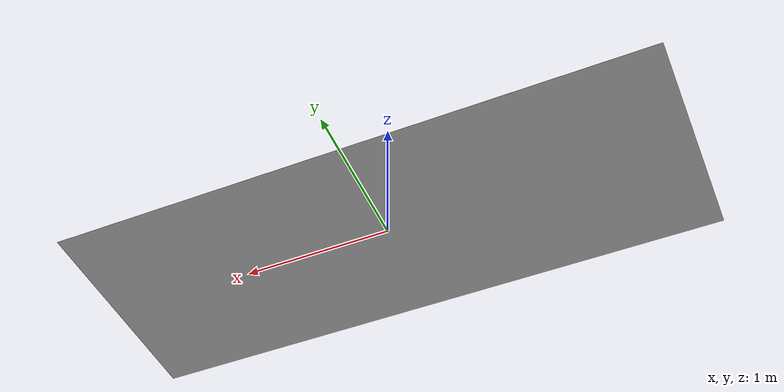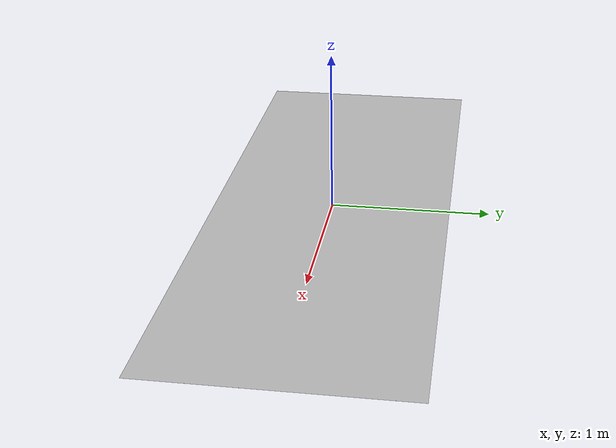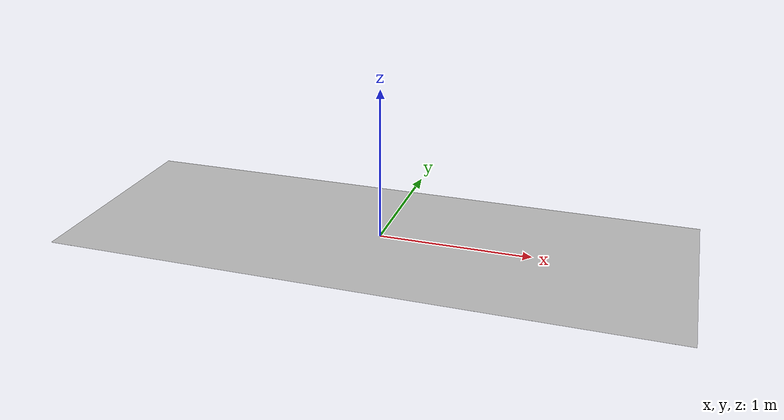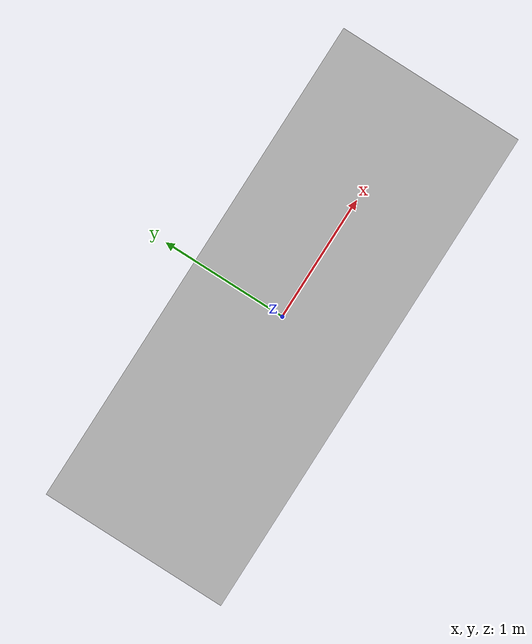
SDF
<?xml version='1.0'?>
<sdf version='1.5'>
  <model name='gm_planter'>

    <link name='planter'>
      <pose frame=''>0 0 0 0 0 0</pose>
      <visual name='visual'>
        <geometry>
          <box>
            <size> 4 1.5 1e-5</size>
          </box>
        </geometry>
        <material>
          <script>
            <uri>model://gm_planter/materials/scripts</uri>
            <uri>model://gm_planter/materials/textures</uri>
            <name>gm_planter/planter</name>
          </script>
          <shader type='vertex'>
            <normal_map>__default__</normal_map>
          </shader>
        </material>
        <pose frame=''>0 0 0 0 -0 0</pose>
        <cast_shadows>1</cast_shadows>
        <transparency>0</transparency>
      </visual>
      <collision name='collision'>
        <laser_retro>0</laser_retro>
        <max_contacts>10</max_contacts>
        <pose frame=''>0 0 0 0 -0 0</pose>
        <geometry>
          <box>
            <size> 4 1.5 1e-05</size>
          </box>
        </geometry>
      </collision>
    </link>

    <static>1</static>
    <allow_auto_disable>1</allow_auto_disable>

  </model>
</sdf>
